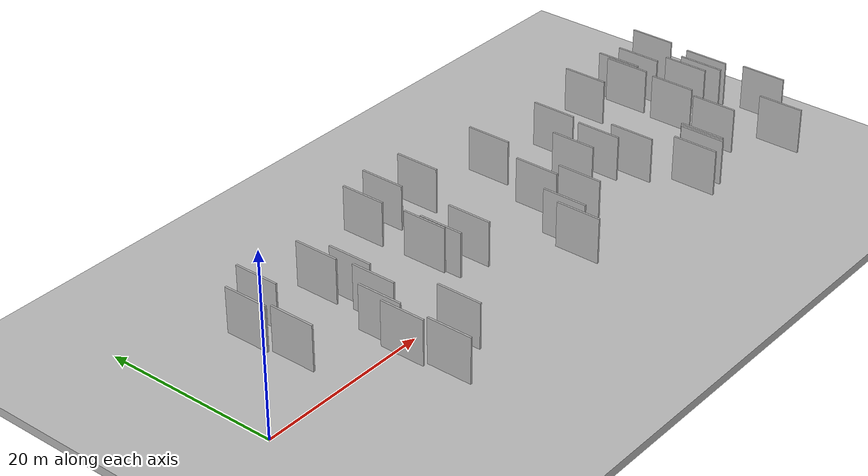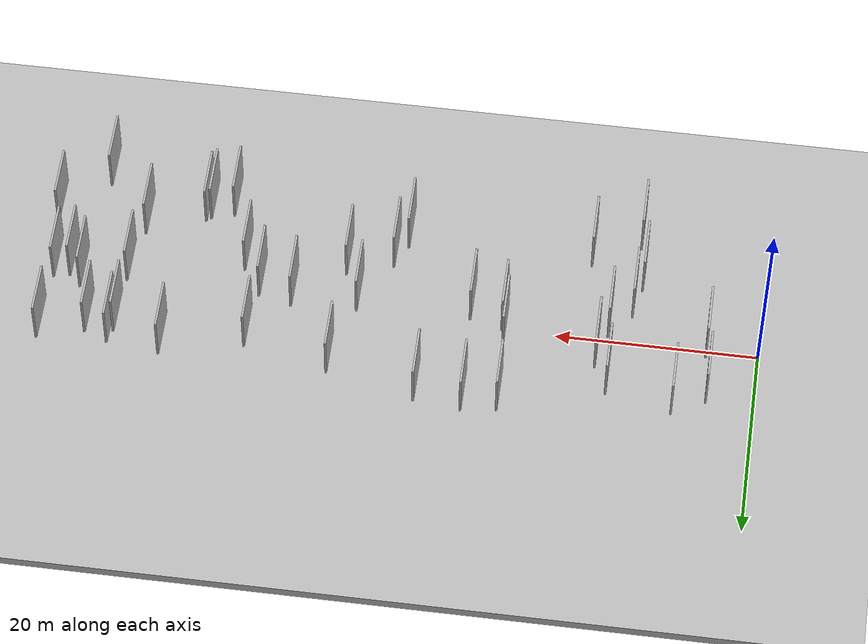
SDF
<?xml version="1.0" encoding="utf-8"?>

<sdf version="1.6">

   <world name="default">

      <gui fullscreen="0">

         <camera name="user_camera">

            <pose>-15 0 4.57585 0 0 0</pose>

            <view_controller>orbit</view_controller>

         </camera>

      </gui>

      <scene>

         <sky>

           <clouds>

             <speed>12</speed>

           </clouds>

         </sky>

         <ambient>0.4 0.4 0.4 1</ambient>

         <background>0.7 0.7 0.7 1</background>

         <shadows>1</shadows>

      </scene>

      <gravity>0 0 -9.8066</gravity>

      <magnetic_field>6e-06 2.3e-05 -4.2e-05</magnetic_field>

      <physics default="0" name="default_physics" type="ode">

         <ode>

            <solver>

               <type>quick</type>

               <iters>10</iters>

               <sor>1.0</sor>

               <use_dynamic_moi_rescaling>0</use_dynamic_moi_rescaling>

            </solver>

            <constraints>

               <cfm>0</cfm>

               <erp>0.2</erp>

               <contact_max_correcting_vel>100</contact_max_correcting_vel>

               <contact_surface_layer>0.001</contact_surface_layer>

            </constraints>

         </ode>

         <max_step_size>0.004</max_step_size>

         <real_time_factor>1</real_time_factor>

         <real_time_update_rate>250</real_time_update_rate>

      </physics>

      <light name="sun" type="directional">

         <cast_shadows>1</cast_shadows>

         <pose>0 0 10 0 0 0</pose>

         <diffuse>0.8 0.8 0.8 1</diffuse>

         <specular>0.2 0.2 0.2 1</specular>

         <attenuation>

            <range>1000</range>

            <constant>0.9</constant>

            <linear>0.01</linear>

            <quadratic>0.001</quadratic>

         </attenuation>

         <direction>-0.5 0.1 -0.9</direction>

      </light>

      <include>

         <name>ground_plane_1</name>

         <uri>model://HANNAS_ground_plane</uri>

         <pose>0 0 0  0 0 0</pose>

      </include>

      <include>

         <name>ground_plane_2</name>

         <uri>model://HANNAS_ground_plane</uri>

         <pose>100 0 0  0 0 0</pose>

      </include>

      <model name="HANNAS_wall_1">

         <static>1</static>

         <pose frame="">27.9251 10.7248 5.0 0.000000 0.000000 1.570796</pose>

         <link name="link">

            <pose frame="">0 0 2.50 0 0 0</pose>

            <collision name="collision">

               <geometry>

                  <box>

                     <size>5.00 0.2 5.00</size>

                  </box>

               </geometry>

               <max_contacts>10</max_contacts>

               <surface>

                  <contact>

                     <ode/>

                  </contact>

                  <bounce/>

                  <friction>

                     <torsional>

                        <ode/>

                     </torsional>

                     <ode/>

                  </friction>

               </surface>

            </collision>

            <visual name="visual">

               <cast_shadows>0</cast_shadows>

               <geometry>

                  <box>

                     <size>5.00 0.2 5.00</size>

                  </box>

               </geometry>

               <material>

                  <script>

                     <uri>model://HANNAS_wall/materials/scripts</uri>

                     <uri>model://HANNAS_wall/materials/textures</uri>

                     <name>vrc/HANNAS_wall</name>

                  </script>

               </material>

            </visual>

            <self_collide>0</self_collide>

            <enable_wind>0</enable_wind>

            <kinematic>0</kinematic>

         </link>

      </model>

      <model name="HANNAS_wall_2">

         <static>1</static>

         <pose frame="">52.7974 -9.2515 5.0 0.000000 0.000000 1.570796</pose>

         <link name="link">

            <pose frame="">0 0 2.50 0 0 0</pose>

            <collision name="collision">

               <geometry>

                  <box>

                     <size>5.00 0.2 5.00</size>

                  </box>

               </geometry>

               <max_contacts>10</max_contacts>

               <surface>

                  <contact>

                     <ode/>

                  </contact>

                  <bounce/>

                  <friction>

                     <torsional>

                        <ode/>

                     </torsional>

                     <ode/>

                  </friction>

               </surface>

            </collision>

            <visual name="visual">

               <cast_shadows>0</cast_shadows>

               <geometry>

                  <box>

                     <size>5.00 0.2 5.00</size>

                  </box>

               </geometry>

               <material>

                  <script>

                     <uri>model://HANNAS_wall/materials/scripts</uri>

                     <uri>model://HANNAS_wall/materials/textures</uri>

                     <name>vrc/HANNAS_wall</name>

                  </script>

               </material>

            </visual>

            <self_collide>0</self_collide>

            <enable_wind>0</enable_wind>

            <kinematic>0</kinematic>

         </link>

      </model>

      <model name="HANNAS_wall_3">

         <static>1</static>

         <pose frame="">24.7432 2.6993 5.0 0.000000 0.000000 1.570796</pose>

         <link name="link">

            <pose frame="">0 0 2.50 0 0 0</pose>

            <collision name="collision">

               <geometry>

                  <box>

                     <size>5.00 0.2 5.00</size>

                  </box>

               </geometry>

               <max_contacts>10</max_contacts>

               <surface>

                  <contact>

                     <ode/>

                  </contact>

                  <bounce/>

                  <friction>

                     <torsional>

                        <ode/>

                     </torsional>

                     <ode/>

                  </friction>

               </surface>

            </collision>

            <visual name="visual">

               <cast_shadows>0</cast_shadows>

               <geometry>

                  <box>

                     <size>5.00 0.2 5.00</size>

                  </box>

               </geometry>

               <material>

                  <script>

                     <uri>model://HANNAS_wall/materials/scripts</uri>

                     <uri>model://HANNAS_wall/materials/textures</uri>

                     <name>vrc/HANNAS_wall</name>

                  </script>

               </material>

            </visual>

            <self_collide>0</self_collide>

            <enable_wind>0</enable_wind>

            <kinematic>0</kinematic>

         </link>

      </model>

      <model name="HANNAS_wall_4">

         <static>1</static>

         <pose frame="">35.2151 -7.6467 5.0 0.000000 0.000000 1.570796</pose>

         <link name="link">

            <pose frame="">0 0 2.50 0 0 0</pose>

            <collision name="collision">

               <geometry>

                  <box>

                     <size>5.00 0.2 5.00</size>

                  </box>

               </geometry>

               <max_contacts>10</max_contacts>

               <surface>

                  <contact>

                     <ode/>

                  </contact>

                  <bounce/>

                  <friction>

                     <torsional>

                        <ode/>

                     </torsional>

                     <ode/>

                  </friction>

               </surface>

            </collision>

            <visual name="visual">

               <cast_shadows>0</cast_shadows>

               <geometry>

                  <box>

                     <size>5.00 0.2 5.00</size>

                  </box>

               </geometry>

               <material>

                  <script>

                     <uri>model://HANNAS_wall/materials/scripts</uri>

                     <uri>model://HANNAS_wall/materials/textures</uri>

                     <name>vrc/HANNAS_wall</name>

                  </script>

               </material>

            </visual>

            <self_collide>0</self_collide>

            <enable_wind>0</enable_wind>

            <kinematic>0</kinematic>

         </link>

      </model>

      <model name="HANNAS_wall_5">

         <static>1</static>

         <pose frame="">17.1165 -7.7200 5.0 0.000000 0.000000 1.570796</pose>

         <link name="link">

            <pose frame="">0 0 2.50 0 0 0</pose>

            <collision name="collision">

               <geometry>

                  <box>

                     <size>5.00 0.2 5.00</size>

                  </box>

               </geometry>

               <max_contacts>10</max_contacts>

               <surface>

                  <contact>

                     <ode/>

                  </contact>

                  <bounce/>

                  <friction>

                     <torsional>

                        <ode/>

                     </torsional>

                     <ode/>

                  </friction>

               </surface>

            </collision>

            <visual name="visual">

               <cast_shadows>0</cast_shadows>

               <geometry>

                  <box>

                     <size>5.00 0.2 5.00</size>

                  </box>

               </geometry>

               <material>

                  <script>

                     <uri>model://HANNAS_wall/materials/scripts</uri>

                     <uri>model://HANNAS_wall/materials/textures</uri>

                     <name>vrc/HANNAS_wall</name>

                  </script>

               </material>

            </visual>

            <self_collide>0</self_collide>

            <enable_wind>0</enable_wind>

            <kinematic>0</kinematic>

         </link>

      </model>

      <model name="HANNAS_wall_6">

         <static>1</static>

         <pose frame="">69.2661 0.2696 5.0 0.000000 0.000000 1.570796</pose>

         <link name="link">

            <pose frame="">0 0 2.50 0 0 0</pose>

            <collision name="collision">

               <geometry>

                  <box>

                     <size>5.00 0.2 5.00</size>

                  </box>

               </geometry>

               <max_contacts>10</max_contacts>

               <surface>

                  <contact>

                     <ode/>

                  </contact>

                  <bounce/>

                  <friction>

                     <torsional>

                        <ode/>

                     </torsional>

                     <ode/>

                  </friction>

               </surface>

            </collision>

            <visual name="visual">

               <cast_shadows>0</cast_shadows>

               <geometry>

                  <box>

                     <size>5.00 0.2 5.00</size>

                  </box>

               </geometry>

               <material>

                  <script>

                     <uri>model://HANNAS_wall/materials/scripts</uri>

                     <uri>model://HANNAS_wall/materials/textures</uri>

                     <name>vrc/HANNAS_wall</name>

                  </script>

               </material>

            </visual>

            <self_collide>0</self_collide>

            <enable_wind>0</enable_wind>

            <kinematic>0</kinematic>

         </link>

      </model>

      <model name="HANNAS_wall_7">

         <static>1</static>

         <pose frame="">69.9953 -6.4917 5.0 0.000000 0.000000 1.570796</pose>

         <link name="link">

            <pose frame="">0 0 2.50 0 0 0</pose>

            <collision name="collision">

               <geometry>

                  <box>

                     <size>5.00 0.2 5.00</size>

                  </box>

               </geometry>

               <max_contacts>10</max_contacts>

               <surface>

                  <contact>

                     <ode/>

                  </contact>

                  <bounce/>

                  <friction>

                     <torsional>

                        <ode/>

                     </torsional>

                     <ode/>

                  </friction>

               </surface>

            </collision>

            <visual name="visual">

               <cast_shadows>0</cast_shadows>

               <geometry>

                  <box>

                     <size>5.00 0.2 5.00</size>

                  </box>

               </geometry>

               <material>

                  <script>

                     <uri>model://HANNAS_wall/materials/scripts</uri>

                     <uri>model://HANNAS_wall/materials/textures</uri>

                     <name>vrc/HANNAS_wall</name>

                  </script>

               </material>

            </visual>

            <self_collide>0</self_collide>

            <enable_wind>0</enable_wind>

            <kinematic>0</kinematic>

         </link>

      </model>

      <model name="HANNAS_wall_8">

         <static>1</static>

         <pose frame="">69.6734 7.5692 5.0 0.000000 0.000000 1.570796</pose>

         <link name="link">

            <pose frame="">0 0 2.50 0 0 0</pose>

            <collision name="collision">

               <geometry>

                  <box>

                     <size>5.00 0.2 5.00</size>

                  </box>

               </geometry>

               <max_contacts>10</max_contacts>

               <surface>

                  <contact>

                     <ode/>

                  </contact>

                  <bounce/>

                  <friction>

                     <torsional>

                        <ode/>

                     </torsional>

                     <ode/>

                  </friction>

               </surface>

            </collision>

            <visual name="visual">

               <cast_shadows>0</cast_shadows>

               <geometry>

                  <box>

                     <size>5.00 0.2 5.00</size>

                  </box>

               </geometry>

               <material>

                  <script>

                     <uri>model://HANNAS_wall/materials/scripts</uri>

                     <uri>model://HANNAS_wall/materials/textures</uri>

                     <name>vrc/HANNAS_wall</name>

                  </script>

               </material>

            </visual>

            <self_collide>0</self_collide>

            <enable_wind>0</enable_wind>

            <kinematic>0</kinematic>

         </link>

      </model>

      <model name="HANNAS_wall_9">

         <static>1</static>

         <pose frame="">14.3449 7.0641 5.0 0.000000 0.000000 1.570796</pose>

         <link name="link">

            <pose frame="">0 0 2.50 0 0 0</pose>

            <collision name="collision">

               <geometry>

                  <box>

                     <size>5.00 0.2 5.00</size>

                  </box>

               </geometry>

               <max_contacts>10</max_contacts>

               <surface>

                  <contact>

                     <ode/>

                  </contact>

                  <bounce/>

                  <friction>

                     <torsional>

                        <ode/>

                     </torsional>

                     <ode/>

                  </friction>

               </surface>

            </collision>

            <visual name="visual">

               <cast_shadows>0</cast_shadows>

               <geometry>

                  <box>

                     <size>5.00 0.2 5.00</size>

                  </box>

               </geometry>

               <material>

                  <script>

                     <uri>model://HANNAS_wall/materials/scripts</uri>

                     <uri>model://HANNAS_wall/materials/textures</uri>

                     <name>vrc/HANNAS_wall</name>

                  </script>

               </material>

            </visual>

            <self_collide>0</self_collide>

            <enable_wind>0</enable_wind>

            <kinematic>0</kinematic>

         </link>

      </model>

      <model name="HANNAS_wall_10">

         <static>1</static>

         <pose frame="">28.2139 0.0971 5.0 0.000000 0.000000 1.570796</pose>

         <link name="link">

            <pose frame="">0 0 2.50 0 0 0</pose>

            <collision name="collision">

               <geometry>

                  <box>

                     <size>5.00 0.2 5.00</size>

                  </box>

               </geometry>

               <max_contacts>10</max_contacts>

               <surface>

                  <contact>

                     <ode/>

                  </contact>

                  <bounce/>

                  <friction>

                     <torsional>

                        <ode/>

                     </torsional>

                     <ode/>

                  </friction>

               </surface>

            </collision>

            <visual name="visual">

               <cast_shadows>0</cast_shadows>

               <geometry>

                  <box>

                     <size>5.00 0.2 5.00</size>

                  </box>

               </geometry>

               <material>

                  <script>

                     <uri>model://HANNAS_wall/materials/scripts</uri>

                     <uri>model://HANNAS_wall/materials/textures</uri>

                     <name>vrc/HANNAS_wall</name>

                  </script>

               </material>

            </visual>

            <self_collide>0</self_collide>

            <enable_wind>0</enable_wind>

            <kinematic>0</kinematic>

         </link>

      </model>

      <model name="HANNAS_wall_11">

         <static>1</static>

         <pose frame="">15.6755 4.1054 5.0 0.000000 0.000000 1.570796</pose>

         <link name="link">

            <pose frame="">0 0 2.50 0 0 0</pose>

            <collision name="collision">

               <geometry>

                  <box>

                     <size>5.00 0.2 5.00</size>

                  </box>

               </geometry>

               <max_contacts>10</max_contacts>

               <surface>

                  <contact>

                     <ode/>

                  </contact>

                  <bounce/>

                  <friction>

                     <torsional>

                        <ode/>

                     </torsional>

                     <ode/>

                  </friction>

               </surface>

            </collision>

            <visual name="visual">

               <cast_shadows>0</cast_shadows>

               <geometry>

                  <box>

                     <size>5.00 0.2 5.00</size>

                  </box>

               </geometry>

               <material>

                  <script>

                     <uri>model://HANNAS_wall/materials/scripts</uri>

                     <uri>model://HANNAS_wall/materials/textures</uri>

                     <name>vrc/HANNAS_wall</name>

                  </script>

               </material>

            </visual>

            <self_collide>0</self_collide>

            <enable_wind>0</enable_wind>

            <kinematic>0</kinematic>

         </link>

      </model>

      <model name="HANNAS_wall_12">

         <static>1</static>

         <pose frame="">55.0235 -8.6340 5.0 0.000000 0.000000 1.570796</pose>

         <link name="link">

            <pose frame="">0 0 2.50 0 0 0</pose>

            <collision name="collision">

               <geometry>

                  <box>

                     <size>5.00 0.2 5.00</size>

                  </box>

               </geometry>

               <max_contacts>10</max_contacts>

               <surface>

                  <contact>

                     <ode/>

                  </contact>

                  <bounce/>

                  <friction>

                     <torsional>

                        <ode/>

                     </torsional>

                     <ode/>

                  </friction>

               </surface>

            </collision>

            <visual name="visual">

               <cast_shadows>0</cast_shadows>

               <geometry>

                  <box>

                     <size>5.00 0.2 5.00</size>

                  </box>

               </geometry>

               <material>

                  <script>

                     <uri>model://HANNAS_wall/materials/scripts</uri>

                     <uri>model://HANNAS_wall/materials/textures</uri>

                     <name>vrc/HANNAS_wall</name>

                  </script>

               </material>

            </visual>

            <self_collide>0</self_collide>

            <enable_wind>0</enable_wind>

            <kinematic>0</kinematic>

         </link>

      </model>

      <model name="HANNAS_wall_13">

         <static>1</static>

         <pose frame="">5.1367 1.5735 5.0 0.000000 0.000000 1.570796</pose>

         <link name="link">

            <pose frame="">0 0 2.50 0 0 0</pose>

            <collision name="collision">

               <geometry>

                  <box>

                     <size>5.00 0.2 5.00</size>

                  </box>

               </geometry>

               <max_contacts>10</max_contacts>

               <surface>

                  <contact>

                     <ode/>

                  </contact>

                  <bounce/>

                  <friction>

                     <torsional>

                        <ode/>

                     </torsional>

                     <ode/>

                  </friction>

               </surface>

            </collision>

            <visual name="visual">

               <cast_shadows>0</cast_shadows>

               <geometry>

                  <box>

                     <size>5.00 0.2 5.00</size>

                  </box>

               </geometry>

               <material>

                  <script>

                     <uri>model://HANNAS_wall/materials/scripts</uri>

                     <uri>model://HANNAS_wall/materials/textures</uri>

                     <name>vrc/HANNAS_wall</name>

                  </script>

               </material>

            </visual>

            <self_collide>0</self_collide>

            <enable_wind>0</enable_wind>

            <kinematic>0</kinematic>

         </link>

      </model>

      <model name="HANNAS_wall_14">

         <static>1</static>

         <pose frame="">49.5628 6.0214 5.0 0.000000 0.000000 1.570796</pose>

         <link name="link">

            <pose frame="">0 0 2.50 0 0 0</pose>

            <collision name="collision">

               <geometry>

                  <box>

                     <size>5.00 0.2 5.00</size>

                  </box>

               </geometry>

               <max_contacts>10</max_contacts>

               <surface>

                  <contact>

                     <ode/>

                  </contact>

                  <bounce/>

                  <friction>

                     <torsional>

                        <ode/>

                     </torsional>

                     <ode/>

                  </friction>

               </surface>

            </collision>

            <visual name="visual">

               <cast_shadows>0</cast_shadows>

               <geometry>

                  <box>

                     <size>5.00 0.2 5.00</size>

                  </box>

               </geometry>

               <material>

                  <script>

                     <uri>model://HANNAS_wall/materials/scripts</uri>

                     <uri>model://HANNAS_wall/materials/textures</uri>

                     <name>vrc/HANNAS_wall</name>

                  </script>

               </material>

            </visual>

            <self_collide>0</self_collide>

            <enable_wind>0</enable_wind>

            <kinematic>0</kinematic>

         </link>

      </model>

      <model name="HANNAS_wall_15">

         <static>1</static>

         <pose frame="">48.9837 -0.0490 5.0 0.000000 0.000000 1.570796</pose>

         <link name="link">

            <pose frame="">0 0 2.50 0 0 0</pose>

            <collision name="collision">

               <geometry>

                  <box>

                     <size>5.00 0.2 5.00</size>

                  </box>

               </geometry>

               <max_contacts>10</max_contacts>

               <surface>

                  <contact>

                     <ode/>

                  </contact>

                  <bounce/>

                  <friction>

                     <torsional>

                        <ode/>

                     </torsional>

                     <ode/>

                  </friction>

               </surface>

            </collision>

            <visual name="visual">

               <cast_shadows>0</cast_shadows>

               <geometry>

                  <box>

                     <size>5.00 0.2 5.00</size>

                  </box>

               </geometry>

               <material>

                  <script>

                     <uri>model://HANNAS_wall/materials/scripts</uri>

                     <uri>model://HANNAS_wall/materials/textures</uri>

                     <name>vrc/HANNAS_wall</name>

                  </script>

               </material>

            </visual>

            <self_collide>0</self_collide>

            <enable_wind>0</enable_wind>

            <kinematic>0</kinematic>

         </link>

      </model>

      <model name="HANNAS_wall_16">

         <static>1</static>

         <pose frame="">32.5353 10.1556 5.0 0.000000 0.000000 1.570796</pose>

         <link name="link">

            <pose frame="">0 0 2.50 0 0 0</pose>

            <collision name="collision">

               <geometry>

                  <box>

                     <size>5.00 0.2 5.00</size>

                  </box>

               </geometry>

               <max_contacts>10</max_contacts>

               <surface>

                  <contact>

                     <ode/>

                  </contact>

                  <bounce/>

                  <friction>

                     <torsional>

                        <ode/>

                     </torsional>

                     <ode/>

                  </friction>

               </surface>

            </collision>

            <visual name="visual">

               <cast_shadows>0</cast_shadows>

               <geometry>

                  <box>

                     <size>5.00 0.2 5.00</size>

                  </box>

               </geometry>

               <material>

                  <script>

                     <uri>model://HANNAS_wall/materials/scripts</uri>

                     <uri>model://HANNAS_wall/materials/textures</uri>

                     <name>vrc/HANNAS_wall</name>

                  </script>

               </material>

            </visual>

            <self_collide>0</self_collide>

            <enable_wind>0</enable_wind>

            <kinematic>0</kinematic>

         </link>

      </model>

      <model name="HANNAS_wall_17">

         <static>1</static>

         <pose frame="">25.0257 0.9497 5.0 0.000000 0.000000 1.570796</pose>

         <link name="link">

            <pose frame="">0 0 2.50 0 0 0</pose>

            <collision name="collision">

               <geometry>

                  <box>

                     <size>5.00 0.2 5.00</size>

                  </box>

               </geometry>

               <max_contacts>10</max_contacts>

               <surface>

                  <contact>

                     <ode/>

                  </contact>

                  <bounce/>

                  <friction>

                     <torsional>

                        <ode/>

                     </torsional>

                     <ode/>

                  </friction>

               </surface>

            </collision>

            <visual name="visual">

               <cast_shadows>0</cast_shadows>

               <geometry>

                  <box>

                     <size>5.00 0.2 5.00</size>

                  </box>

               </geometry>

               <material>

                  <script>

                     <uri>model://HANNAS_wall/materials/scripts</uri>

                     <uri>model://HANNAS_wall/materials/textures</uri>

                     <name>vrc/HANNAS_wall</name>

                  </script>

               </material>

            </visual>

            <self_collide>0</self_collide>

            <enable_wind>0</enable_wind>

            <kinematic>0</kinematic>

         </link>

      </model>

      <model name="HANNAS_wall_18">

         <static>1</static>

         <pose frame="">40.8609 -3.6369 5.0 0.000000 0.000000 1.570796</pose>

         <link name="link">

            <pose frame="">0 0 2.50 0 0 0</pose>

            <collision name="collision">

               <geometry>

                  <box>

                     <size>5.00 0.2 5.00</size>

                  </box>

               </geometry>

               <max_contacts>10</max_contacts>

               <surface>

                  <contact>

                     <ode/>

                  </contact>

                  <bounce/>

                  <friction>

                     <torsional>

                        <ode/>

                     </torsional>

                     <ode/>

                  </friction>

               </surface>

            </collision>

            <visual name="visual">

               <cast_shadows>0</cast_shadows>

               <geometry>

                  <box>

                     <size>5.00 0.2 5.00</size>

                  </box>

               </geometry>

               <material>

                  <script>

                     <uri>model://HANNAS_wall/materials/scripts</uri>

                     <uri>model://HANNAS_wall/materials/textures</uri>

                     <name>vrc/HANNAS_wall</name>

                  </script>

               </material>

            </visual>

            <self_collide>0</self_collide>

            <enable_wind>0</enable_wind>

            <kinematic>0</kinematic>

         </link>

      </model>

      <model name="HANNAS_wall_19">

         <static>1</static>

         <pose frame="">67.7114 -0.0716 5.0 0.000000 0.000000 1.570796</pose>

         <link name="link">

            <pose frame="">0 0 2.50 0 0 0</pose>

            <collision name="collision">

               <geometry>

                  <box>

                     <size>5.00 0.2 5.00</size>

                  </box>

               </geometry>

               <max_contacts>10</max_contacts>

               <surface>

                  <contact>

                     <ode/>

                  </contact>

                  <bounce/>

                  <friction>

                     <torsional>

                        <ode/>

                     </torsional>

                     <ode/>

                  </friction>

               </surface>

            </collision>

            <visual name="visual">

               <cast_shadows>0</cast_shadows>

               <geometry>

                  <box>

                     <size>5.00 0.2 5.00</size>

                  </box>

               </geometry>

               <material>

                  <script>

                     <uri>model://HANNAS_wall/materials/scripts</uri>

                     <uri>model://HANNAS_wall/materials/textures</uri>

                     <name>vrc/HANNAS_wall</name>

                  </script>

               </material>

            </visual>

            <self_collide>0</self_collide>

            <enable_wind>0</enable_wind>

            <kinematic>0</kinematic>

         </link>

      </model>

      <model name="HANNAS_wall_20">

         <static>1</static>

         <pose frame="">62.0622 -0.1976 5.0 0.000000 0.000000 1.570796</pose>

         <link name="link">

            <pose frame="">0 0 2.50 0 0 0</pose>

            <collision name="collision">

               <geometry>

                  <box>

                     <size>5.00 0.2 5.00</size>

                  </box>

               </geometry>

               <max_contacts>10</max_contacts>

               <surface>

                  <contact>

                     <ode/>

                  </contact>

                  <bounce/>

                  <friction>

                     <torsional>

                        <ode/>

                     </torsional>

                     <ode/>

                  </friction>

               </surface>

            </collision>

            <visual name="visual">

               <cast_shadows>0</cast_shadows>

               <geometry>

                  <box>

                     <size>5.00 0.2 5.00</size>

                  </box>

               </geometry>

               <material>

                  <script>

                     <uri>model://HANNAS_wall/materials/scripts</uri>

                     <uri>model://HANNAS_wall/materials/textures</uri>

                     <name>vrc/HANNAS_wall</name>

                  </script>

               </material>

            </visual>

            <self_collide>0</self_collide>

            <enable_wind>0</enable_wind>

            <kinematic>0</kinematic>

         </link>

      </model>

      <model name="HANNAS_wall_21">

         <static>1</static>

         <pose frame="">50.8129 -2.8991 5.0 0.000000 0.000000 1.570796</pose>

         <link name="link">

            <pose frame="">0 0 2.50 0 0 0</pose>

            <collision name="collision">

               <geometry>

                  <box>

                     <size>5.00 0.2 5.00</size>

                  </box>

               </geometry>

               <max_contacts>10</max_contacts>

               <surface>

                  <contact>

                     <ode/>

                  </contact>

                  <bounce/>

                  <friction>

                     <torsional>

                        <ode/>

                     </torsional>

                     <ode/>

                  </friction>

               </surface>

            </collision>

            <visual name="visual">

               <cast_shadows>0</cast_shadows>

               <geometry>

                  <box>

                     <size>5.00 0.2 5.00</size>

                  </box>

               </geometry>

               <material>

                  <script>

                     <uri>model://HANNAS_wall/materials/scripts</uri>

                     <uri>model://HANNAS_wall/materials/textures</uri>

                     <name>vrc/HANNAS_wall</name>

                  </script>

               </material>

            </visual>

            <self_collide>0</self_collide>

            <enable_wind>0</enable_wind>

            <kinematic>0</kinematic>

         </link>

      </model>

      <model name="HANNAS_wall_22">

         <static>1</static>

         <pose frame="">62.3925 5.8667 5.0 0.000000 0.000000 1.570796</pose>

         <link name="link">

            <pose frame="">0 0 2.50 0 0 0</pose>

            <collision name="collision">

               <geometry>

                  <box>

                     <size>5.00 0.2 5.00</size>

                  </box>

               </geometry>

               <max_contacts>10</max_contacts>

               <surface>

                  <contact>

                     <ode/>

                  </contact>

                  <bounce/>

                  <friction>

                     <torsional>

                        <ode/>

                     </torsional>

                     <ode/>

                  </friction>

               </surface>

            </collision>

            <visual name="visual">

               <cast_shadows>0</cast_shadows>

               <geometry>

                  <box>

                     <size>5.00 0.2 5.00</size>

                  </box>

               </geometry>

               <material>

                  <script>

                     <uri>model://HANNAS_wall/materials/scripts</uri>

                     <uri>model://HANNAS_wall/materials/textures</uri>

                     <name>vrc/HANNAS_wall</name>

                  </script>

               </material>

            </visual>

            <self_collide>0</self_collide>

            <enable_wind>0</enable_wind>

            <kinematic>0</kinematic>

         </link>

      </model>

      <model name="HANNAS_wall_23">

         <static>1</static>

         <pose frame="">61.1545 -6.0313 5.0 0.000000 0.000000 1.570796</pose>

         <link name="link">

            <pose frame="">0 0 2.50 0 0 0</pose>

            <collision name="collision">

               <geometry>

                  <box>

                     <size>5.00 0.2 5.00</size>

                  </box>

               </geometry>

               <max_contacts>10</max_contacts>

               <surface>

                  <contact>

                     <ode/>

                  </contact>

                  <bounce/>

                  <friction>

                     <torsional>

                        <ode/>

                     </torsional>

                     <ode/>

                  </friction>

               </surface>

            </collision>

            <visual name="visual">

               <cast_shadows>0</cast_shadows>

               <geometry>

                  <box>

                     <size>5.00 0.2 5.00</size>

                  </box>

               </geometry>

               <material>

                  <script>

                     <uri>model://HANNAS_wall/materials/scripts</uri>

                     <uri>model://HANNAS_wall/materials/textures</uri>

                     <name>vrc/HANNAS_wall</name>

                  </script>

               </material>

            </visual>

            <self_collide>0</self_collide>

            <enable_wind>0</enable_wind>

            <kinematic>0</kinematic>

         </link>

      </model>

      <model name="HANNAS_wall_24">

         <static>1</static>

         <pose frame="">65.4898 -11.4149 5.0 0.000000 0.000000 1.570796</pose>

         <link name="link">

            <pose frame="">0 0 2.50 0 0 0</pose>

            <collision name="collision">

               <geometry>

                  <box>

                     <size>5.00 0.2 5.00</size>

                  </box>

               </geometry>

               <max_contacts>10</max_contacts>

               <surface>

                  <contact>

                     <ode/>

                  </contact>

                  <bounce/>

                  <friction>

                     <torsional>

                        <ode/>

                     </torsional>

                     <ode/>

                  </friction>

               </surface>

            </collision>

            <visual name="visual">

               <cast_shadows>0</cast_shadows>

               <geometry>

                  <box>

                     <size>5.00 0.2 5.00</size>

                  </box>

               </geometry>

               <material>

                  <script>

                     <uri>model://HANNAS_wall/materials/scripts</uri>

                     <uri>model://HANNAS_wall/materials/textures</uri>

                     <name>vrc/HANNAS_wall</name>

                  </script>

               </material>

            </visual>

            <self_collide>0</self_collide>

            <enable_wind>0</enable_wind>

            <kinematic>0</kinematic>

         </link>

      </model>

      <model name="HANNAS_wall_25">

         <static>1</static>

         <pose frame="">55.4942 -8.2882 5.0 0.000000 0.000000 1.570796</pose>

         <link name="link">

            <pose frame="">0 0 2.50 0 0 0</pose>

            <collision name="collision">

               <geometry>

                  <box>

                     <size>5.00 0.2 5.00</size>

                  </box>

               </geometry>

               <max_contacts>10</max_contacts>

               <surface>

                  <contact>

                     <ode/>

                  </contact>

                  <bounce/>

                  <friction>

                     <torsional>

                        <ode/>

                     </torsional>

                     <ode/>

                  </friction>

               </surface>

            </collision>

            <visual name="visual">

               <cast_shadows>0</cast_shadows>

               <geometry>

                  <box>

                     <size>5.00 0.2 5.00</size>

                  </box>

               </geometry>

               <material>

                  <script>

                     <uri>model://HANNAS_wall/materials/scripts</uri>

                     <uri>model://HANNAS_wall/materials/textures</uri>

                     <name>vrc/HANNAS_wall</name>

                  </script>

               </material>

            </visual>

            <self_collide>0</self_collide>

            <enable_wind>0</enable_wind>

            <kinematic>0</kinematic>

         </link>

      </model>

      <model name="HANNAS_wall_26">

         <static>1</static>

         <pose frame="">7.9081 8.5342 5.0 0.000000 0.000000 1.570796</pose>

         <link name="link">

            <pose frame="">0 0 2.50 0 0 0</pose>

            <collision name="collision">

               <geometry>

                  <box>

                     <size>5.00 0.2 5.00</size>

                  </box>

               </geometry>

               <max_contacts>10</max_contacts>

               <surface>

                  <contact>

                     <ode/>

                  </contact>

                  <bounce/>

                  <friction>

                     <torsional>

                        <ode/>

                     </torsional>

                     <ode/>

                  </friction>

               </surface>

            </collision>

            <visual name="visual">

               <cast_shadows>0</cast_shadows>

               <geometry>

                  <box>

                     <size>5.00 0.2 5.00</size>

                  </box>

               </geometry>

               <material>

                  <script>

                     <uri>model://HANNAS_wall/materials/scripts</uri>

                     <uri>model://HANNAS_wall/materials/textures</uri>

                     <name>vrc/HANNAS_wall</name>

                  </script>

               </material>

            </visual>

            <self_collide>0</self_collide>

            <enable_wind>0</enable_wind>

            <kinematic>0</kinematic>

         </link>

      </model>

      <model name="HANNAS_wall_27">

         <static>1</static>

         <pose frame="">39.3322 0.4588 5.0 0.000000 0.000000 1.570796</pose>

         <link name="link">

            <pose frame="">0 0 2.50 0 0 0</pose>

            <collision name="collision">

               <geometry>

                  <box>

                     <size>5.00 0.2 5.00</size>

                  </box>

               </geometry>

               <max_contacts>10</max_contacts>

               <surface>

                  <contact>

                     <ode/>

                  </contact>

                  <bounce/>

                  <friction>

                     <torsional>

                        <ode/>

                     </torsional>

                     <ode/>

                  </friction>

               </surface>

            </collision>

            <visual name="visual">

               <cast_shadows>0</cast_shadows>

               <geometry>

                  <box>

                     <size>5.00 0.2 5.00</size>

                  </box>

               </geometry>

               <material>

                  <script>

                     <uri>model://HANNAS_wall/materials/scripts</uri>

                     <uri>model://HANNAS_wall/materials/textures</uri>

                     <name>vrc/HANNAS_wall</name>

                  </script>

               </material>

            </visual>

            <self_collide>0</self_collide>

            <enable_wind>0</enable_wind>

            <kinematic>0</kinematic>

         </link>

      </model>

      <model name="HANNAS_wall_28">

         <static>1</static>

         <pose frame="">12.4846 -10.3945 5.0 0.000000 0.000000 1.570796</pose>

         <link name="link">

            <pose frame="">0 0 2.50 0 0 0</pose>

            <collision name="collision">

               <geometry>

                  <box>

                     <size>5.00 0.2 5.00</size>

                  </box>

               </geometry>

               <max_contacts>10</max_contacts>

               <surface>

                  <contact>

                     <ode/>

                  </contact>

                  <bounce/>

                  <friction>

                     <torsional>

                        <ode/>

                     </torsional>

                     <ode/>

                  </friction>

               </surface>

            </collision>

            <visual name="visual">

               <cast_shadows>0</cast_shadows>

               <geometry>

                  <box>

                     <size>5.00 0.2 5.00</size>

                  </box>

               </geometry>

               <material>

                  <script>

                     <uri>model://HANNAS_wall/materials/scripts</uri>

                     <uri>model://HANNAS_wall/materials/textures</uri>

                     <name>vrc/HANNAS_wall</name>

                  </script>

               </material>

            </visual>

            <self_collide>0</self_collide>

            <enable_wind>0</enable_wind>

            <kinematic>0</kinematic>

         </link>

      </model>

      <model name="HANNAS_wall_29">

         <static>1</static>

         <pose frame="">41.2594 8.0075 5.0 0.000000 0.000000 1.570796</pose>

         <link name="link">

            <pose frame="">0 0 2.50 0 0 0</pose>

            <collision name="collision">

               <geometry>

                  <box>

                     <size>5.00 0.2 5.00</size>

                  </box>

               </geometry>

               <max_contacts>10</max_contacts>

               <surface>

                  <contact>

                     <ode/>

                  </contact>

                  <bounce/>

                  <friction>

                     <torsional>

                        <ode/>

                     </torsional>

                     <ode/>

                  </friction>

               </surface>

            </collision>

            <visual name="visual">

               <cast_shadows>0</cast_shadows>

               <geometry>

                  <box>

                     <size>5.00 0.2 5.00</size>

                  </box>

               </geometry>

               <material>

                  <script>

                     <uri>model://HANNAS_wall/materials/scripts</uri>

                     <uri>model://HANNAS_wall/materials/textures</uri>

                     <name>vrc/HANNAS_wall</name>

                  </script>

               </material>

            </visual>

            <self_collide>0</self_collide>

            <enable_wind>0</enable_wind>

            <kinematic>0</kinematic>

         </link>

      </model>

      <model name="HANNAS_wall_30">

         <static>1</static>

         <pose frame="">66.5181 1.1086 5.0 0.000000 0.000000 1.570796</pose>

         <link name="link">

            <pose frame="">0 0 2.50 0 0 0</pose>

            <collision name="collision">

               <geometry>

                  <box>

                     <size>5.00 0.2 5.00</size>

                  </box>

               </geometry>

               <max_contacts>10</max_contacts>

               <surface>

                  <contact>

                     <ode/>

                  </contact>

                  <bounce/>

                  <friction>

                     <torsional>

                        <ode/>

                     </torsional>

                     <ode/>

                  </friction>

               </surface>

            </collision>

            <visual name="visual">

               <cast_shadows>0</cast_shadows>

               <geometry>

                  <box>

                     <size>5.00 0.2 5.00</size>

                  </box>

               </geometry>

               <material>

                  <script>

                     <uri>model://HANNAS_wall/materials/scripts</uri>

                     <uri>model://HANNAS_wall/materials/textures</uri>

                     <name>vrc/HANNAS_wall</name>

                  </script>

               </material>

            </visual>

            <self_collide>0</self_collide>

            <enable_wind>0</enable_wind>

            <kinematic>0</kinematic>

         </link>

      </model>

      <model name="HANNAS_wall_31">

         <static>1</static>

         <pose frame="">62.8193 7.2661 5.0 0.000000 0.000000 1.570796</pose>

         <link name="link">

            <pose frame="">0 0 2.50 0 0 0</pose>

            <collision name="collision">

               <geometry>

                  <box>

                     <size>5.00 0.2 5.00</size>

                  </box>

               </geometry>

               <max_contacts>10</max_contacts>

               <surface>

                  <contact>

                     <ode/>

                  </contact>

                  <bounce/>

                  <friction>

                     <torsional>

                        <ode/>

                     </torsional>

                     <ode/>

                  </friction>

               </surface>

            </collision>

            <visual name="visual">

               <cast_shadows>0</cast_shadows>

               <geometry>

                  <box>

                     <size>5.00 0.2 5.00</size>

                  </box>

               </geometry>

               <material>

                  <script>

                     <uri>model://HANNAS_wall/materials/scripts</uri>

                     <uri>model://HANNAS_wall/materials/textures</uri>

                     <name>vrc/HANNAS_wall</name>

                  </script>

               </material>

            </visual>

            <self_collide>0</self_collide>

            <enable_wind>0</enable_wind>

            <kinematic>0</kinematic>

         </link>

      </model>

      <model name="HANNAS_wall_32">

         <static>1</static>

         <pose frame="">12.6055 -2.1745 5.0 0.000000 0.000000 1.570796</pose>

         <link name="link">

            <pose frame="">0 0 2.50 0 0 0</pose>

            <collision name="collision">

               <geometry>

                  <box>

                     <size>5.00 0.2 5.00</size>

                  </box>

               </geometry>

               <max_contacts>10</max_contacts>

               <surface>

                  <contact>

                     <ode/>

                  </contact>

                  <bounce/>

                  <friction>

                     <torsional>

                        <ode/>

                     </torsional>

                     <ode/>

                  </friction>

               </surface>

            </collision>

            <visual name="visual">

               <cast_shadows>0</cast_shadows>

               <geometry>

                  <box>

                     <size>5.00 0.2 5.00</size>

                  </box>

               </geometry>

               <material>

                  <script>

                     <uri>model://HANNAS_wall/materials/scripts</uri>

                     <uri>model://HANNAS_wall/materials/textures</uri>

                     <name>vrc/HANNAS_wall</name>

                  </script>

               </material>

            </visual>

            <self_collide>0</self_collide>

            <enable_wind>0</enable_wind>

            <kinematic>0</kinematic>

         </link>

      </model>

      <model name="HANNAS_wall_33">

         <static>1</static>

         <pose frame="">14.7390 0.3999 5.0 0.000000 0.000000 1.570796</pose>

         <link name="link">

            <pose frame="">0 0 2.50 0 0 0</pose>

            <collision name="collision">

               <geometry>

                  <box>

                     <size>5.00 0.2 5.00</size>

                  </box>

               </geometry>

               <max_contacts>10</max_contacts>

               <surface>

                  <contact>

                     <ode/>

                  </contact>

                  <bounce/>

                  <friction>

                     <torsional>

                        <ode/>

                     </torsional>

                     <ode/>

                  </friction>

               </surface>

            </collision>

            <visual name="visual">

               <cast_shadows>0</cast_shadows>

               <geometry>

                  <box>

                     <size>5.00 0.2 5.00</size>

                  </box>

               </geometry>

               <material>

                  <script>

                     <uri>model://HANNAS_wall/materials/scripts</uri>

                     <uri>model://HANNAS_wall/materials/textures</uri>

                     <name>vrc/HANNAS_wall</name>

                  </script>

               </material>

            </visual>

            <self_collide>0</self_collide>

            <enable_wind>0</enable_wind>

            <kinematic>0</kinematic>

         </link>

      </model>

      <model name="HANNAS_wall_34">

         <static>1</static>

         <pose frame="">4.7123 6.7823 5.0 0.000000 0.000000 1.570796</pose>

         <link name="link">

            <pose frame="">0 0 2.50 0 0 0</pose>

            <collision name="collision">

               <geometry>

                  <box>

                     <size>5.00 0.2 5.00</size>

                  </box>

               </geometry>

               <max_contacts>10</max_contacts>

               <surface>

                  <contact>

                     <ode/>

                  </contact>

                  <bounce/>

                  <friction>

                     <torsional>

                        <ode/>

                     </torsional>

                     <ode/>

                  </friction>

               </surface>

            </collision>

            <visual name="visual">

               <cast_shadows>0</cast_shadows>

               <geometry>

                  <box>

                     <size>5.00 0.2 5.00</size>

                  </box>

               </geometry>

               <material>

                  <script>

                     <uri>model://HANNAS_wall/materials/scripts</uri>

                     <uri>model://HANNAS_wall/materials/textures</uri>

                     <name>vrc/HANNAS_wall</name>

                  </script>

               </material>

            </visual>

            <self_collide>0</self_collide>

            <enable_wind>0</enable_wind>

            <kinematic>0</kinematic>

         </link>

      </model>

      <model name="HANNAS_wall_35">

         <static>1</static>

         <pose frame="">45.7381 0.7397 5.0 0.000000 0.000000 1.570796</pose>

         <link name="link">

            <pose frame="">0 0 2.50 0 0 0</pose>

            <collision name="collision">

               <geometry>

                  <box>

                     <size>5.00 0.2 5.00</size>

                  </box>

               </geometry>

               <max_contacts>10</max_contacts>

               <surface>

                  <contact>

                     <ode/>

                  </contact>

                  <bounce/>

                  <friction>

                     <torsional>

                        <ode/>

                     </torsional>

                     <ode/>

                  </friction>

               </surface>

            </collision>

            <visual name="visual">

               <cast_shadows>0</cast_shadows>

               <geometry>

                  <box>

                     <size>5.00 0.2 5.00</size>

                  </box>

               </geometry>

               <material>

                  <script>

                     <uri>model://HANNAS_wall/materials/scripts</uri>

                     <uri>model://HANNAS_wall/materials/textures</uri>

                     <name>vrc/HANNAS_wall</name>

                  </script>

               </material>

            </visual>

            <self_collide>0</self_collide>

            <enable_wind>0</enable_wind>

            <kinematic>0</kinematic>

         </link>

      </model>

      <model name="HANNAS_wall_36">

         <static>1</static>

         <pose frame="">11.9150 -5.4331 5.0 0.000000 0.000000 1.570796</pose>

         <link name="link">

            <pose frame="">0 0 2.50 0 0 0</pose>

            <collision name="collision">

               <geometry>

                  <box>

                     <size>5.00 0.2 5.00</size>

                  </box>

               </geometry>

               <max_contacts>10</max_contacts>

               <surface>

                  <contact>

                     <ode/>

                  </contact>

                  <bounce/>

                  <friction>

                     <torsional>

                        <ode/>

                     </torsional>

                     <ode/>

                  </friction>

               </surface>

            </collision>

            <visual name="visual">

               <cast_shadows>0</cast_shadows>

               <geometry>

                  <box>

                     <size>5.00 0.2 5.00</size>

                  </box>

               </geometry>

               <material>

                  <script>

                     <uri>model://HANNAS_wall/materials/scripts</uri>

                     <uri>model://HANNAS_wall/materials/textures</uri>

                     <name>vrc/HANNAS_wall</name>

                  </script>

               </material>

            </visual>

            <self_collide>0</self_collide>

            <enable_wind>0</enable_wind>

            <kinematic>0</kinematic>

         </link>

      </model>

      <model name="HANNAS_wall_37">

         <static>1</static>

         <pose frame="">36.3762 -5.1517 5.0 0.000000 0.000000 1.570796</pose>

         <link name="link">

            <pose frame="">0 0 2.50 0 0 0</pose>

            <collision name="collision">

               <geometry>

                  <box>

                     <size>5.00 0.2 5.00</size>

                  </box>

               </geometry>

               <max_contacts>10</max_contacts>

               <surface>

                  <contact>

                     <ode/>

                  </contact>

                  <bounce/>

                  <friction>

                     <torsional>

                        <ode/>

                     </torsional>

                     <ode/>

                  </friction>

               </surface>

            </collision>

            <visual name="visual">

               <cast_shadows>0</cast_shadows>

               <geometry>

                  <box>

                     <size>5.00 0.2 5.00</size>

                  </box>

               </geometry>

               <material>

                  <script>

                     <uri>model://HANNAS_wall/materials/scripts</uri>

                     <uri>model://HANNAS_wall/materials/textures</uri>

                     <name>vrc/HANNAS_wall</name>

                  </script>

               </material>

            </visual>

            <self_collide>0</self_collide>

            <enable_wind>0</enable_wind>

            <kinematic>0</kinematic>

         </link>

      </model>

      <model name="HANNAS_wall_38">

         <static>1</static>

         <pose frame="">24.4947 10.2462 5.0 0.000000 0.000000 1.570796</pose>

         <link name="link">

            <pose frame="">0 0 2.50 0 0 0</pose>

            <collision name="collision">

               <geometry>

                  <box>

                     <size>5.00 0.2 5.00</size>

                  </box>

               </geometry>

               <max_contacts>10</max_contacts>

               <surface>

                  <contact>

                     <ode/>

                  </contact>

                  <bounce/>

                  <friction>

                     <torsional>

                        <ode/>

                     </torsional>

                     <ode/>

                  </friction>

               </surface>

            </collision>

            <visual name="visual">

               <cast_shadows>0</cast_shadows>

               <geometry>

                  <box>

                     <size>5.00 0.2 5.00</size>

                  </box>

               </geometry>

               <material>

                  <script>

                     <uri>model://HANNAS_wall/materials/scripts</uri>

                     <uri>model://HANNAS_wall/materials/textures</uri>

                     <name>vrc/HANNAS_wall</name>

                  </script>

               </material>

            </visual>

            <self_collide>0</self_collide>

            <enable_wind>0</enable_wind>

            <kinematic>0</kinematic>

         </link>

      </model>

      <model name="HANNAS_wall_39">

         <static>1</static>

         <pose frame="">57.6611 7.9518 5.0 0.000000 0.000000 1.570796</pose>

         <link name="link">

            <pose frame="">0 0 2.50 0 0 0</pose>

            <collision name="collision">

               <geometry>

                  <box>

                     <size>5.00 0.2 5.00</size>

                  </box>

               </geometry>

               <max_contacts>10</max_contacts>

               <surface>

                  <contact>

                     <ode/>

                  </contact>

                  <bounce/>

                  <friction>

                     <torsional>

                        <ode/>

                     </torsional>

                     <ode/>

                  </friction>

               </surface>

            </collision>

            <visual name="visual">

               <cast_shadows>0</cast_shadows>

               <geometry>

                  <box>

                     <size>5.00 0.2 5.00</size>

                  </box>

               </geometry>

               <material>

                  <script>

                     <uri>model://HANNAS_wall/materials/scripts</uri>

                     <uri>model://HANNAS_wall/materials/textures</uri>

                     <name>vrc/HANNAS_wall</name>

                  </script>

               </material>

            </visual>

            <self_collide>0</self_collide>

            <enable_wind>0</enable_wind>

            <kinematic>0</kinematic>

         </link>

      </model>

      <model name="HANNAS_wall_40">

         <static>1</static>

         <pose frame="">65.1356 6.3179 5.0 0.000000 0.000000 1.570796</pose>

         <link name="link">

            <pose frame="">0 0 2.50 0 0 0</pose>

            <collision name="collision">

               <geometry>

                  <box>

                     <size>5.00 0.2 5.00</size>

                  </box>

               </geometry>

               <max_contacts>10</max_contacts>

               <surface>

                  <contact>

                     <ode/>

                  </contact>

                  <bounce/>

                  <friction>

                     <torsional>

                        <ode/>

                     </torsional>

                     <ode/>

                  </friction>

               </surface>

            </collision>

            <visual name="visual">

               <cast_shadows>0</cast_shadows>

               <geometry>

                  <box>

                     <size>5.00 0.2 5.00</size>

                  </box>

               </geometry>

               <material>

                  <script>

                     <uri>model://HANNAS_wall/materials/scripts</uri>

                     <uri>model://HANNAS_wall/materials/textures</uri>

                     <name>vrc/HANNAS_wall</name>

                  </script>

               </material>

            </visual>

            <self_collide>0</self_collide>

            <enable_wind>0</enable_wind>

            <kinematic>0</kinematic>

         </link>

      </model>

   </world>

</sdf>
